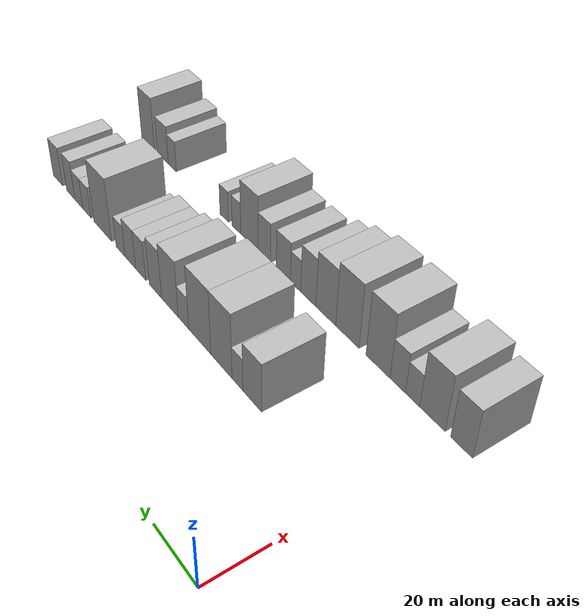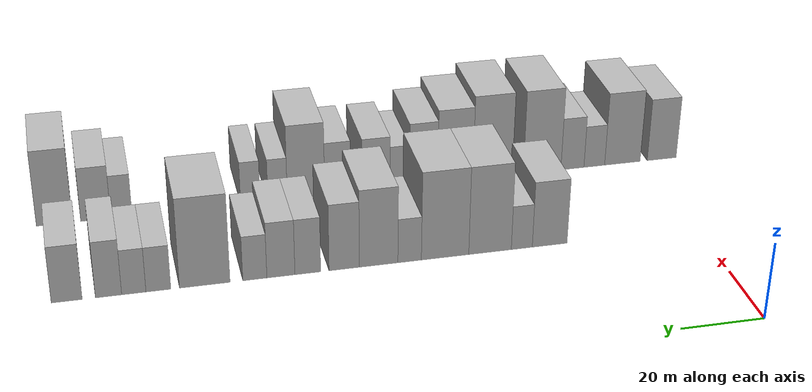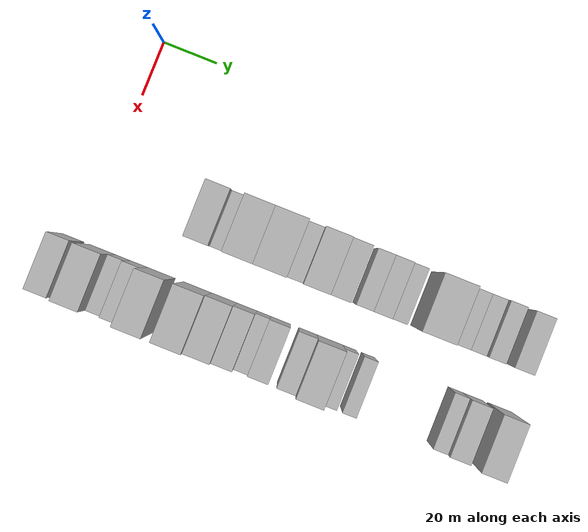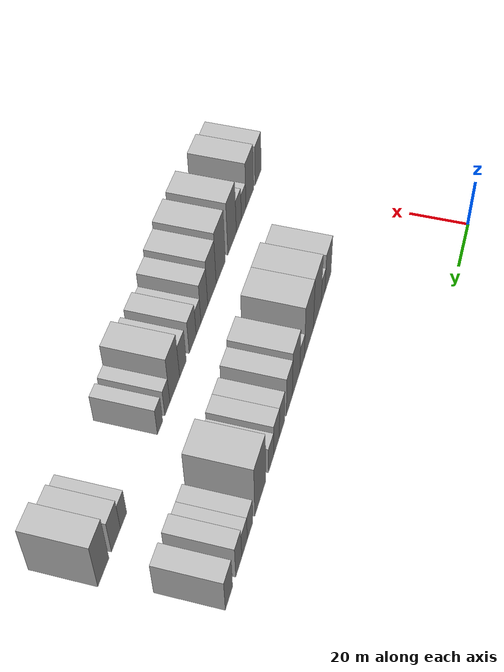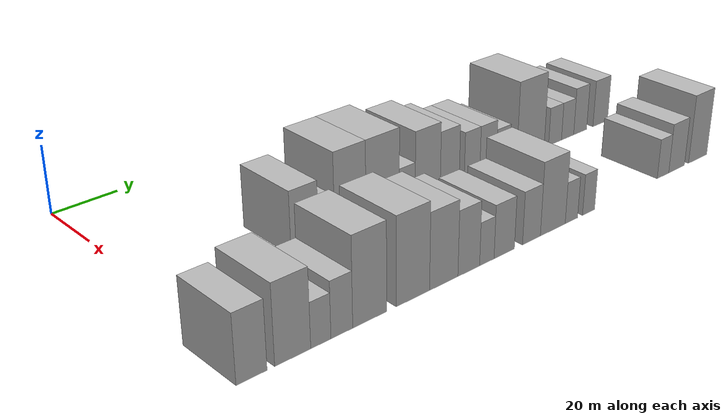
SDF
<sdf version="1.6">
 <world name="default">
  <model name="building_32">
   <static>1</static>
   <pose>50.0000 38.1596 0 0.000000 0.000000 0.000000</pose>
   <link name="link">
    <pose>0 0 9.00 0 0 0</pose>
    <collision name="collision"><geometry><box><size>20.0000 8.8054 18.0000</size></box></geometry></collision>
    <visual name="visual">
     <cast_shadows>0</cast_shadows>
     <geometry><box><size>20.0000 8.8054 18.0000</size></box></geometry>
     <material>
      <script>
       <uri>model://HANNAS_wall/materials/scripts</uri>
       <uri>model://HANNAS_wall/materials/textures</uri>
       <name>vrc/HANNAS_wall</name>
      </script>
     </material>
    </visual>
   </link>
  </model>
  <model name="building_33">
   <static>1</static>
   <pose>50.0000 45.2010 0 0.000000 0.000000 0.000000</pose>
   <link name="link">
    <pose>0 0 6.00 0 0 0</pose>
    <collision name="collision"><geometry><box><size>20.0000 5.2773 12.0000</size></box></geometry></collision>
    <visual name="visual">
     <cast_shadows>0</cast_shadows>
     <geometry><box><size>20.0000 5.2773 12.0000</size></box></geometry>
     <material>
      <script>
       <uri>model://HANNAS_wall/materials/scripts</uri>
       <uri>model://HANNAS_wall/materials/textures</uri>
       <name>vrc/HANNAS_wall</name>
      </script>
     </material>
    </visual>
   </link>
  </model>
  <model name="building_34">
   <static>1</static>
   <pose>50.0000 53.1479 0 0.000000 0.000000 0.000000</pose>
   <link name="link">
    <pose>0 0 12.00 0 0 0</pose>
    <collision name="collision"><geometry><box><size>20.0000 10.6165 24.0000</size></box></geometry></collision>
    <visual name="visual">
     <cast_shadows>0</cast_shadows>
     <geometry><box><size>20.0000 10.6165 24.0000</size></box></geometry>
     <material>
      <script>
       <uri>model://HANNAS_wall/materials/scripts</uri>
       <uri>model://HANNAS_wall/materials/textures</uri>
       <name>vrc/HANNAS_wall</name>
      </script>
     </material>
    </visual>
   </link>
  </model>
  <model name="building_35">
   <static>1</static>
   <pose>50.0000 64.3146 0 0.000000 0.000000 0.000000</pose>
   <link name="link">
    <pose>0 0 12.00 0 0 0</pose>
    <collision name="collision"><geometry><box><size>20.0000 11.7168 24.0000</size></box></geometry></collision>
    <visual name="visual">
     <cast_shadows>0</cast_shadows>
     <geometry><box><size>20.0000 11.7168 24.0000</size></box></geometry>
     <material>
      <script>
       <uri>model://HANNAS_wall/materials/scripts</uri>
       <uri>model://HANNAS_wall/materials/textures</uri>
       <name>vrc/HANNAS_wall</name>
      </script>
     </material>
    </visual>
   </link>
  </model>
  <model name="building_36">
   <static>1</static>
   <pose>50.0000 73.0456 0 0.000000 0.000000 0.000000</pose>
   <link name="link">
    <pose>0 0 6.00 0 0 0</pose>
    <collision name="collision"><geometry><box><size>20.0000 5.7453 12.0000</size></box></geometry></collision>
    <visual name="visual">
     <cast_shadows>0</cast_shadows>
     <geometry><box><size>20.0000 5.7453 12.0000</size></box></geometry>
     <material>
      <script>
       <uri>model://HANNAS_wall/materials/scripts</uri>
       <uri>model://HANNAS_wall/materials/textures</uri>
       <name>vrc/HANNAS_wall</name>
      </script>
     </material>
    </visual>
   </link>
  </model>
  <model name="building_37">
   <static>1</static>
   <pose>50.0000 80.6158 0 0.000000 0.000000 0.000000</pose>
   <link name="link">
    <pose>0 0 10.50 0 0 0</pose>
    <collision name="collision"><geometry><box><size>20.0000 9.3951 21.0000</size></box></geometry></collision>
    <visual name="visual">
     <cast_shadows>0</cast_shadows>
     <geometry><box><size>20.0000 9.3951 21.0000</size></box></geometry>
     <material>
      <script>
       <uri>model://HANNAS_wall/materials/scripts</uri>
       <uri>model://HANNAS_wall/materials/textures</uri>
       <name>vrc/HANNAS_wall</name>
      </script>
     </material>
    </visual>
   </link>
  </model>
  <model name="building_38">
   <static>1</static>
   <pose>50.0000 88.9659 0 0.000000 0.000000 0.000000</pose>
   <link name="link">
    <pose>0 0 9.00 0 0 0</pose>
    <collision name="collision"><geometry><box><size>20.0000 7.3051 18.0000</size></box></geometry></collision>
    <visual name="visual">
     <cast_shadows>0</cast_shadows>
     <geometry><box><size>20.0000 7.3051 18.0000</size></box></geometry>
     <material>
      <script>
       <uri>model://HANNAS_wall/materials/scripts</uri>
       <uri>model://HANNAS_wall/materials/textures</uri>
       <name>vrc/HANNAS_wall</name>
      </script>
     </material>
    </visual>
   </link>
  </model>
  <model name="building_39">
   <static>1</static>
   <pose>50.0000 97.7068 0 0.000000 0.000000 0.000000</pose>
   <link name="link">
    <pose>0 0 7.50 0 0 0</pose>
    <collision name="collision"><geometry><box><size>20.0000 6.1767 15.0000</size></box></geometry></collision>
    <visual name="visual">
     <cast_shadows>0</cast_shadows>
     <geometry><box><size>20.0000 6.1767 15.0000</size></box></geometry>
     <material>
      <script>
       <uri>model://HANNAS_wall/materials/scripts</uri>
       <uri>model://HANNAS_wall/materials/textures</uri>
       <name>vrc/HANNAS_wall</name>
      </script>
     </material>
    </visual>
   </link>
  </model>
  <model name="building_40">
   <static>1</static>
   <pose>50.0000 104.1359 0 0.000000 0.000000 0.000000</pose>
   <link name="link">
    <pose>0 0 7.50 0 0 0</pose>
    <collision name="collision"><geometry><box><size>20.0000 6.6816 15.0000</size></box></geometry></collision>
    <visual name="visual">
     <cast_shadows>0</cast_shadows>
     <geometry><box><size>20.0000 6.6816 15.0000</size></box></geometry>
     <material>
      <script>
       <uri>model://HANNAS_wall/materials/scripts</uri>
       <uri>model://HANNAS_wall/materials/textures</uri>
       <name>vrc/HANNAS_wall</name>
      </script>
     </material>
    </visual>
   </link>
  </model>
  <model name="building_41">
   <static>1</static>
   <pose>50.0000 110.3209 0 0.000000 0.000000 0.000000</pose>
   <link name="link">
    <pose>0 0 6.00 0 0 0</pose>
    <collision name="collision"><geometry><box><size>20.0000 5.6883 12.0000</size></box></geometry></collision>
    <visual name="visual">
     <cast_shadows>0</cast_shadows>
     <geometry><box><size>20.0000 5.6883 12.0000</size></box></geometry>
     <material>
      <script>
       <uri>model://HANNAS_wall/materials/scripts</uri>
       <uri>model://HANNAS_wall/materials/textures</uri>
       <name>vrc/HANNAS_wall</name>
      </script>
     </material>
    </visual>
   </link>
  </model>
  <model name="building_42">
   <static>1</static>
   <pose>50.0000 122.0882 0 0.000000 0.000000 0.000000</pose>
   <link name="link">
    <pose>0 0 12.00 0 0 0</pose>
    <collision name="collision"><geometry><box><size>20.0000 11.8464 24.0000</size></box></geometry></collision>
    <visual name="visual">
     <cast_shadows>0</cast_shadows>
     <geometry><box><size>20.0000 11.8464 24.0000</size></box></geometry>
     <material>
      <script>
       <uri>model://HANNAS_wall/materials/scripts</uri>
       <uri>model://HANNAS_wall/materials/textures</uri>
       <name>vrc/HANNAS_wall</name>
      </script>
     </material>
    </visual>
   </link>
  </model>
  <model name="building_43">
   <static>1</static>
   <pose>50.0000 132.8961 0 0.000000 0.000000 0.000000</pose>
   <link name="link">
    <pose>0 0 6.00 0 0 0</pose>
    <collision name="collision"><geometry><box><size>20.0000 5.7694 12.0000</size></box></geometry></collision>
    <visual name="visual">
     <cast_shadows>0</cast_shadows>
     <geometry><box><size>20.0000 5.7694 12.0000</size></box></geometry>
     <material>
      <script>
       <uri>model://HANNAS_wall/materials/scripts</uri>
       <uri>model://HANNAS_wall/materials/textures</uri>
       <name>vrc/HANNAS_wall</name>
      </script>
     </material>
    </visual>
   </link>
  </model>
  <model name="building_44">
   <static>1</static>
   <pose>50.0000 138.5760 0 0.000000 0.000000 0.000000</pose>
   <link name="link">
    <pose>0 0 6.00 0 0 0</pose>
    <collision name="collision"><geometry><box><size>20.0000 5.5903 12.0000</size></box></geometry></collision>
    <visual name="visual">
     <cast_shadows>0</cast_shadows>
     <geometry><box><size>20.0000 5.5903 12.0000</size></box></geometry>
     <material>
      <script>
       <uri>model://HANNAS_wall/materials/scripts</uri>
       <uri>model://HANNAS_wall/materials/textures</uri>
       <name>vrc/HANNAS_wall</name>
      </script>
     </material>
    </visual>
   </link>
  </model>
  <model name="building_45">
   <static>1</static>
   <pose>50.0000 144.3839 0 0.000000 0.000000 0.000000</pose>
   <link name="link">
    <pose>0 0 7.50 0 0 0</pose>
    <collision name="collision"><geometry><box><size>20.0000 6.0255 15.0000</size></box></geometry></collision>
    <visual name="visual">
     <cast_shadows>0</cast_shadows>
     <geometry><box><size>20.0000 6.0255 15.0000</size></box></geometry>
     <material>
      <script>
       <uri>model://HANNAS_wall/materials/scripts</uri>
       <uri>model://HANNAS_wall/materials/textures</uri>
       <name>vrc/HANNAS_wall</name>
      </script>
     </material>
    </visual>
   </link>
  </model>
  <model name="building_46">
   <static>1</static>
   <pose>50.0000 153.9156 0 0.000000 0.000000 0.000000</pose>
   <link name="link">
    <pose>0 0 7.50 0 0 0</pose>
    <collision name="collision"><geometry><box><size>20.0000 7.0379 15.0000</size></box></geometry></collision>
    <visual name="visual">
     <cast_shadows>0</cast_shadows>
     <geometry><box><size>20.0000 7.0379 15.0000</size></box></geometry>
     <material>
      <script>
       <uri>model://HANNAS_wall/materials/scripts</uri>
       <uri>model://HANNAS_wall/materials/textures</uri>
       <name>vrc/HANNAS_wall</name>
      </script>
     </material>
    </visual>
   </link>
  </model>
  <model name="building_97">
   <static>1</static>
   <pose>85.0000 -3.8224 0 0.000000 0.000000 0.000000</pose>
   <link name="link">
    <pose>0 0 9.00 0 0 0</pose>
    <collision name="collision"><geometry><box><size>20.0000 8.1064 18.0000</size></box></geometry></collision>
    <visual name="visual">
     <cast_shadows>0</cast_shadows>
     <geometry><box><size>20.0000 8.1064 18.0000</size></box></geometry>
     <material>
      <script>
       <uri>model://HANNAS_wall/materials/scripts</uri>
       <uri>model://HANNAS_wall/materials/textures</uri>
       <name>vrc/HANNAS_wall</name>
      </script>
     </material>
    </visual>
   </link>
  </model>
  <model name="building_98">
   <static>1</static>
   <pose>85.0000 7.1614 0 0.000000 0.000000 0.000000</pose>
   <link name="link">
    <pose>0 0 10.50 0 0 0</pose>
    <collision name="collision"><geometry><box><size>20.0000 9.8611 21.0000</size></box></geometry></collision>
    <visual name="visual">
     <cast_shadows>0</cast_shadows>
     <geometry><box><size>20.0000 9.8611 21.0000</size></box></geometry>
     <material>
      <script>
       <uri>model://HANNAS_wall/materials/scripts</uri>
       <uri>model://HANNAS_wall/materials/textures</uri>
       <name>vrc/HANNAS_wall</name>
      </script>
     </material>
    </visual>
   </link>
  </model>
  <model name="building_99">
   <static>1</static>
   <pose>85.0000 14.9528 0 0.000000 0.000000 0.000000</pose>
   <link name="link">
    <pose>0 0 6.00 0 0 0</pose>
    <collision name="collision"><geometry><box><size>20.0000 5.7216 12.0000</size></box></geometry></collision>
    <visual name="visual">
     <cast_shadows>0</cast_shadows>
     <geometry><box><size>20.0000 5.7216 12.0000</size></box></geometry>
     <material>
      <script>
       <uri>model://HANNAS_wall/materials/scripts</uri>
       <uri>model://HANNAS_wall/materials/textures</uri>
       <name>vrc/HANNAS_wall</name>
      </script>
     </material>
    </visual>
   </link>
  </model>
  <model name="building_100">
   <static>1</static>
   <pose>85.0000 20.9844 0 0.000000 0.000000 0.000000</pose>
   <link name="link">
    <pose>0 0 7.50 0 0 0</pose>
    <collision name="collision"><geometry><box><size>20.0000 6.3417 15.0000</size></box></geometry></collision>
    <visual name="visual">
     <cast_shadows>0</cast_shadows>
     <geometry><box><size>20.0000 6.3417 15.0000</size></box></geometry>
     <material>
      <script>
       <uri>model://HANNAS_wall/materials/scripts</uri>
       <uri>model://HANNAS_wall/materials/textures</uri>
       <name>vrc/HANNAS_wall</name>
      </script>
     </material>
    </visual>
   </link>
  </model>
  <model name="building_101">
   <static>1</static>
   <pose>85.0000 29.2850 0 0.000000 0.000000 0.000000</pose>
   <link name="link">
    <pose>0 0 12.00 0 0 0</pose>
    <collision name="collision"><geometry><box><size>20.0000 10.2594 24.0000</size></box></geometry></collision>
    <visual name="visual">
     <cast_shadows>0</cast_shadows>
     <geometry><box><size>20.0000 10.2594 24.0000</size></box></geometry>
     <material>
      <script>
       <uri>model://HANNAS_wall/materials/scripts</uri>
       <uri>model://HANNAS_wall/materials/textures</uri>
       <name>vrc/HANNAS_wall</name>
      </script>
     </material>
    </visual>
   </link>
  </model>
  <model name="building_102">
   <static>1</static>
   <pose>85.0000 42.7125 0 0.000000 0.000000 0.000000</pose>
   <link name="link">
    <pose>0 0 12.00 0 0 0</pose>
    <collision name="collision"><geometry><box><size>20.0000 10.5956 24.0000</size></box></geometry></collision>
    <visual name="visual">
     <cast_shadows>0</cast_shadows>
     <geometry><box><size>20.0000 10.5956 24.0000</size></box></geometry>
     <material>
      <script>
       <uri>model://HANNAS_wall/materials/scripts</uri>
       <uri>model://HANNAS_wall/materials/textures</uri>
       <name>vrc/HANNAS_wall</name>
      </script>
     </material>
    </visual>
   </link>
  </model>
  <model name="building_103">
   <static>1</static>
   <pose>85.0000 52.7380 0 0.000000 0.000000 0.000000</pose>
   <link name="link">
    <pose>0 0 10.50 0 0 0</pose>
    <collision name="collision"><geometry><box><size>20.0000 9.4554 21.0000</size></box></geometry></collision>
    <visual name="visual">
     <cast_shadows>0</cast_shadows>
     <geometry><box><size>20.0000 9.4554 21.0000</size></box></geometry>
     <material>
      <script>
       <uri>model://HANNAS_wall/materials/scripts</uri>
       <uri>model://HANNAS_wall/materials/textures</uri>
       <name>vrc/HANNAS_wall</name>
      </script>
     </material>
    </visual>
   </link>
  </model>
  <model name="building_104">
   <static>1</static>
   <pose>85.0000 61.2043 0 0.000000 0.000000 0.000000</pose>
   <link name="link">
    <pose>0 0 9.00 0 0 0</pose>
    <collision name="collision"><geometry><box><size>20.0000 7.4770 18.0000</size></box></geometry></collision>
    <visual name="visual">
     <cast_shadows>0</cast_shadows>
     <geometry><box><size>20.0000 7.4770 18.0000</size></box></geometry>
     <material>
      <script>
       <uri>model://HANNAS_wall/materials/scripts</uri>
       <uri>model://HANNAS_wall/materials/textures</uri>
       <name>vrc/HANNAS_wall</name>
      </script>
     </material>
    </visual>
   </link>
  </model>
  <model name="building_105">
   <static>1</static>
   <pose>85.0000 67.4993 0 0.000000 0.000000 0.000000</pose>
   <link name="link">
    <pose>0 0 6.00 0 0 0</pose>
    <collision name="collision"><geometry><box><size>20.0000 5.1131 12.0000</size></box></geometry></collision>
    <visual name="visual">
     <cast_shadows>0</cast_shadows>
     <geometry><box><size>20.0000 5.1131 12.0000</size></box></geometry>
     <material>
      <script>
       <uri>model://HANNAS_wall/materials/scripts</uri>
       <uri>model://HANNAS_wall/materials/textures</uri>
       <name>vrc/HANNAS_wall</name>
      </script>
     </material>
    </visual>
   </link>
  </model>
  <model name="building_106">
   <static>1</static>
   <pose>85.0000 73.7506 0 0.000000 0.000000 0.000000</pose>
   <link name="link">
    <pose>0 0 7.50 0 0 0</pose>
    <collision name="collision"><geometry><box><size>20.0000 7.3895 15.0000</size></box></geometry></collision>
    <visual name="visual">
     <cast_shadows>0</cast_shadows>
     <geometry><box><size>20.0000 7.3895 15.0000</size></box></geometry>
     <material>
      <script>
       <uri>model://HANNAS_wall/materials/scripts</uri>
       <uri>model://HANNAS_wall/materials/textures</uri>
       <name>vrc/HANNAS_wall</name>
      </script>
     </material>
    </visual>
   </link>
  </model>
  <model name="building_107">
   <static>1</static>
   <pose>85.0000 83.8105 0 0.000000 0.000000 0.000000</pose>
   <link name="link">
    <pose>0 0 7.50 0 0 0</pose>
    <collision name="collision"><geometry><box><size>20.0000 6.7302 15.0000</size></box></geometry></collision>
    <visual name="visual">
     <cast_shadows>0</cast_shadows>
     <geometry><box><size>20.0000 6.7302 15.0000</size></box></geometry>
     <material>
      <script>
       <uri>model://HANNAS_wall/materials/scripts</uri>
       <uri>model://HANNAS_wall/materials/textures</uri>
       <name>vrc/HANNAS_wall</name>
      </script>
     </material>
    </visual>
   </link>
  </model>
  <model name="building_108">
   <static>1</static>
   <pose>85.0000 92.0110 0 0.000000 0.000000 0.000000</pose>
   <link name="link">
    <pose>0 0 10.50 0 0 0</pose>
    <collision name="collision"><geometry><box><size>20.0000 9.6709 21.0000</size></box></geometry></collision>
    <visual name="visual">
     <cast_shadows>0</cast_shadows>
     <geometry><box><size>20.0000 9.6709 21.0000</size></box></geometry>
     <material>
      <script>
       <uri>model://HANNAS_wall/materials/scripts</uri>
       <uri>model://HANNAS_wall/materials/textures</uri>
       <name>vrc/HANNAS_wall</name>
      </script>
     </material>
    </visual>
   </link>
  </model>
  <model name="building_109">
   <static>1</static>
   <pose>85.0000 99.3276 0 0.000000 0.000000 0.000000</pose>
   <link name="link">
    <pose>0 0 6.00 0 0 0</pose>
    <collision name="collision"><geometry><box><size>20.0000 4.9623 12.0000</size></box></geometry></collision>
    <visual name="visual">
     <cast_shadows>0</cast_shadows>
     <geometry><box><size>20.0000 4.9623 12.0000</size></box></geometry>
     <material>
      <script>
       <uri>model://HANNAS_wall/materials/scripts</uri>
       <uri>model://HANNAS_wall/materials/textures</uri>
       <name>vrc/HANNAS_wall</name>
      </script>
     </material>
    </visual>
   </link>
  </model>
  <model name="building_110">
   <static>1</static>
   <pose>85.0000 106.3001 0 0.000000 0.000000 0.000000</pose>
   <link name="link">
    <pose>0 0 6.00 0 0 0</pose>
    <collision name="collision"><geometry><box><size>20.0000 4.9826 12.0000</size></box></geometry></collision>
    <visual name="visual">
     <cast_shadows>0</cast_shadows>
     <geometry><box><size>20.0000 4.9826 12.0000</size></box></geometry>
     <material>
      <script>
       <uri>model://HANNAS_wall/materials/scripts</uri>
       <uri>model://HANNAS_wall/materials/textures</uri>
       <name>vrc/HANNAS_wall</name>
      </script>
     </material>
    </visual>
   </link>
  </model>
  <model name="building_111">
   <static>1</static>
   <pose>85.0000 138.7536 0 0.000000 0.000000 0.000000</pose>
   <link name="link">
    <pose>0 0 6.00 0 0 0</pose>
    <collision name="collision"><geometry><box><size>20.0000 5.3081 12.0000</size></box></geometry></collision>
    <visual name="visual">
     <cast_shadows>0</cast_shadows>
     <geometry><box><size>20.0000 5.3081 12.0000</size></box></geometry>
     <material>
      <script>
       <uri>model://HANNAS_wall/materials/scripts</uri>
       <uri>model://HANNAS_wall/materials/textures</uri>
       <name>vrc/HANNAS_wall</name>
      </script>
     </material>
    </visual>
   </link>
  </model>
  <model name="building_112">
   <static>1</static>
   <pose>85.0000 145.1075 0 0.000000 0.000000 0.000000</pose>
   <link name="link">
    <pose>0 0 7.50 0 0 0</pose>
    <collision name="collision"><geometry><box><size>20.0000 7.3998 15.0000</size></box></geometry></collision>
    <visual name="visual">
     <cast_shadows>0</cast_shadows>
     <geometry><box><size>20.0000 7.3998 15.0000</size></box></geometry>
     <material>
      <script>
       <uri>model://HANNAS_wall/materials/scripts</uri>
       <uri>model://HANNAS_wall/materials/textures</uri>
       <name>vrc/HANNAS_wall</name>
      </script>
     </material>
    </visual>
   </link>
  </model>
  <model name="building_113">
   <static>1</static>
   <pose>85.0000 155.2365 0 0.000000 0.000000 0.000000</pose>
   <link name="link">
    <pose>0 0 10.50 0 0 0</pose>
    <collision name="collision"><geometry><box><size>20.0000 8.8582 21.0000</size></box></geometry></collision>
    <visual name="visual">
     <cast_shadows>0</cast_shadows>
     <geometry><box><size>20.0000 8.8582 21.0000</size></box></geometry>
     <material>
      <script>
       <uri>model://HANNAS_wall/materials/scripts</uri>
       <uri>model://HANNAS_wall/materials/textures</uri>
       <name>vrc/HANNAS_wall</name>
      </script>
     </material>
    </visual>
   </link>
  </model>
 </world>
</sdf>
